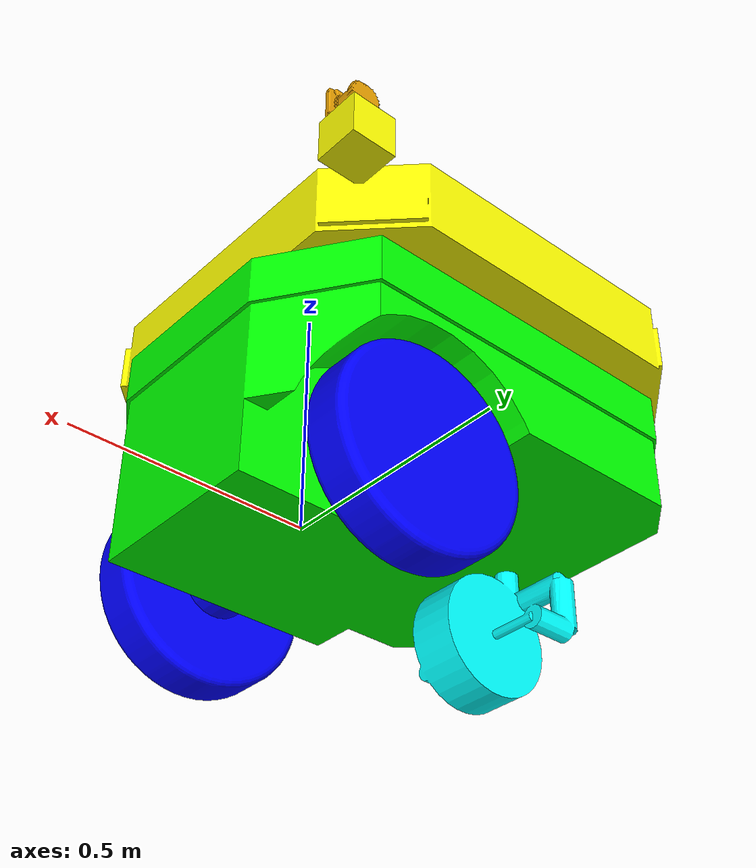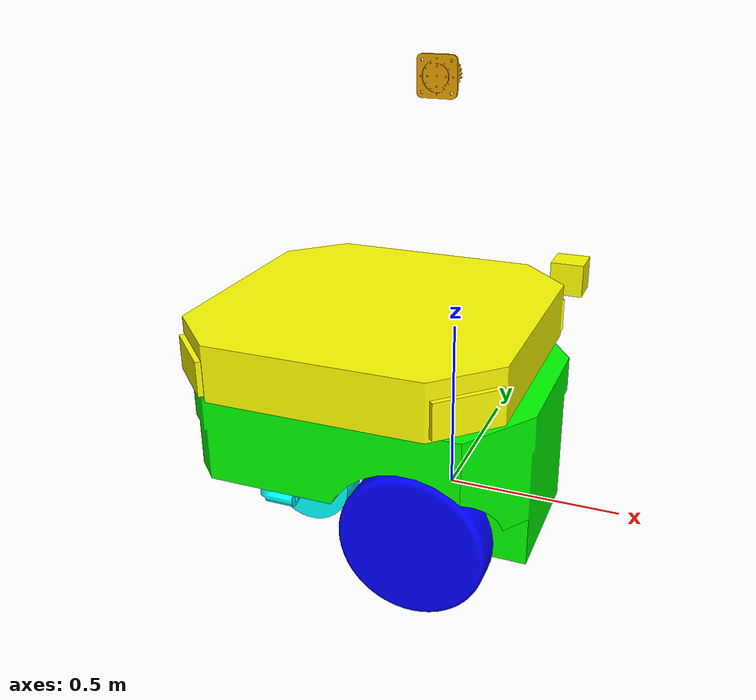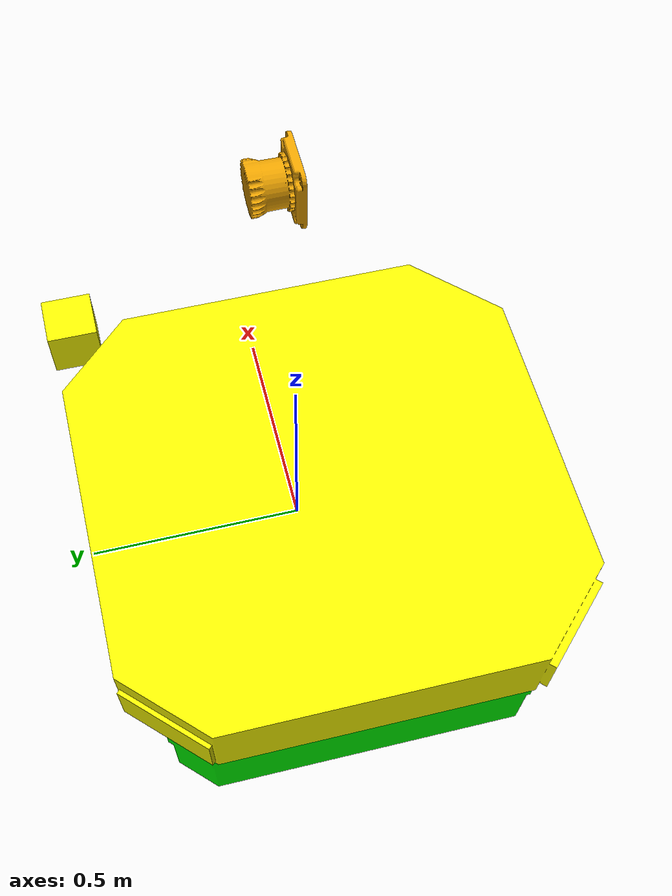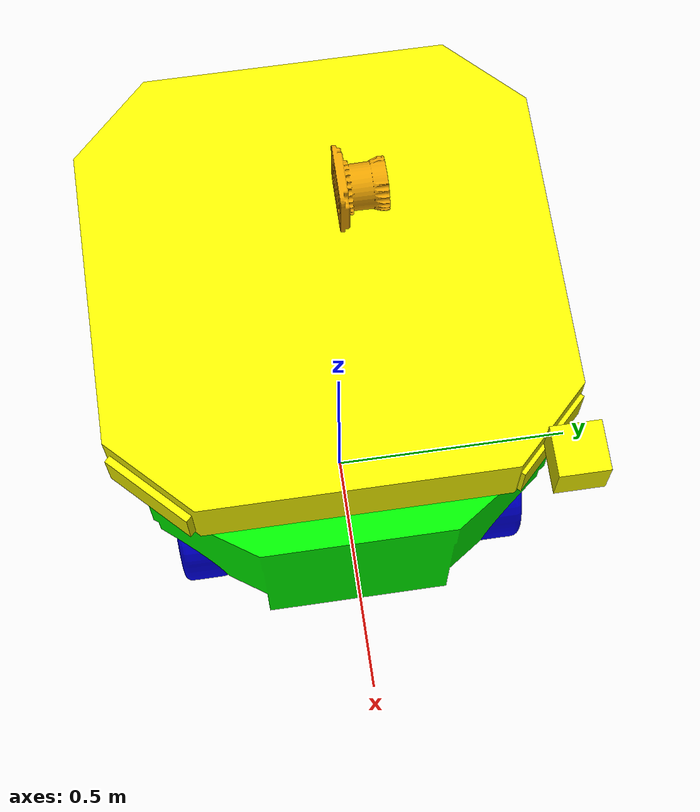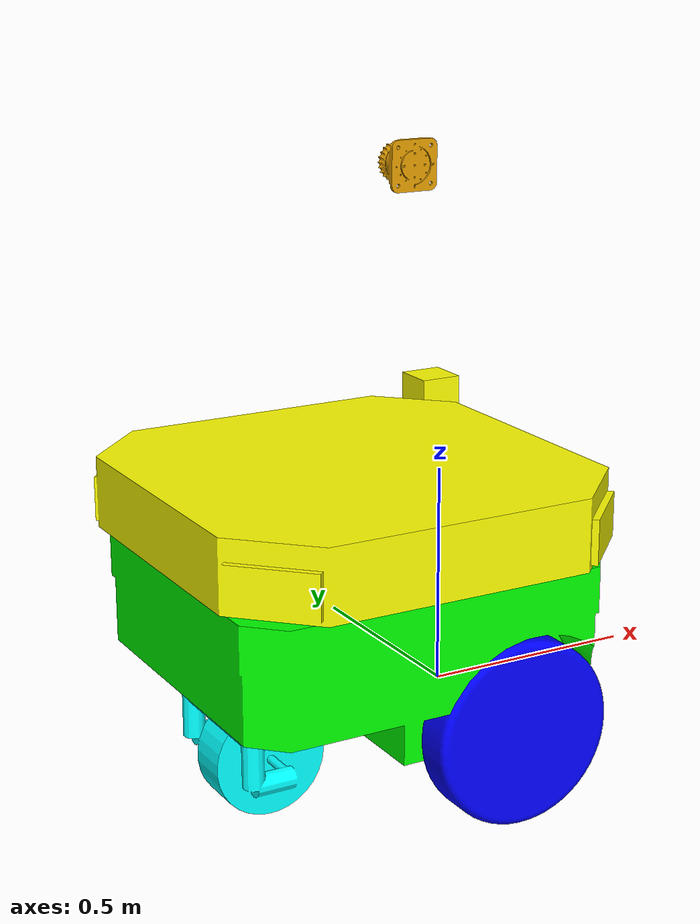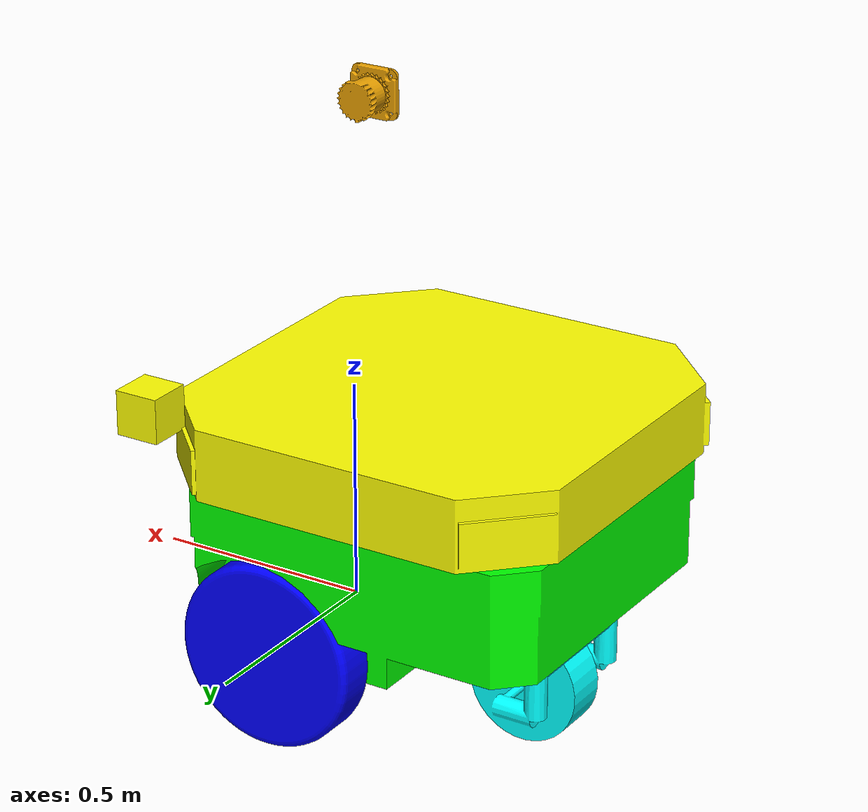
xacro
<?xml version="1.0"?>
<robot name="padih_bot" xmlns:xacro="http://ros.org/wiki/xacro">

    <xacro:property name="M_PI" value="3.1415926535897931"/>

    <xacro:arg name="namespace" default=" "/>
    <xacro:arg name="use_mock_hardware" default="false"/>
    <xacro:arg name="simulation" default="false"/>
    <xacro:arg name="namespace" default=" "/>
    <xacro:arg name="ros_domain_id" default=" "/>
    <xacro:property name="robot_id" value="$(arg ros_domain_id)"/>

    <xacro:include filename="padih_bot_colors.xacro"/>
    <xacro:include filename="padih_bot_inertias.xacro"/>

    <xacro:include filename="padih_bot_core.xacro"/>
    <xacro:include filename="gps.xacro"/>
    <xacro:include filename="OS1-32.xacro"/>
    <xacro:include filename="padih_bot_diffdrive_control.xacro"/>

</robot>

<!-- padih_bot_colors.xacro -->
<robot xmlns:xacro="http://ros.org/wiki/xacro">
    <material name=" white">
        <color rgba="1.0 1.0 1.0 1.0"/>
    </material>

    <material name="cyan">
        <color rgba="0.0 1.0 1.0 1.0"/>
    </material>

    <material name="grey">
        <color rgba="0.5 0.5 0.5 1.0"/>
    </material>

    <material name="red">
        <color rgba="1.0 0.0 0.0 1.0"/>
    </material>

    <material name="green">
        <color rgba="0.0 1.0 0.0 1.0"/>
    </material>

    <material name="blue">
        <color rgba="0.0 0.0 1.0  1"/>
    </material>

    <material name="yellow">
        <color rgba="1.0 1.0 0.0  1"/>
    </material>

</robot>

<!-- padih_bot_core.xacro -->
<robot xmlns:xacro="http://ros.org/wiki/xacro">

    <!-- Define robot constants -->
    <xacro:property name="turret_height" value="0.155"/>
    <xacro:property name="wheel_radius" value="0.21"/>
    <xacro:property name="wheel_zoff" value="0.05"/>
    <xacro:property name="friction_coefficient_1" value="10"/>
    <xacro:property name="friction_coefficient_2" value="10"/>

    <!--    base link-->
    <link name="base_link">
        <visual>
            <origin xyz="0 0 0" rpy="0 0 0"/>
            <geometry>
                <mesh filename="package://padih_bot/src/meshes/base_link.STL"/>
            </geometry>
            <material name="green"/>
        </visual>
        <collision>
            <origin xyz="0 0 0" rpy="0 0 0"/>
            <geometry>
                <mesh filename="package://padih_bot/src/meshes/base_link.STL"/>
            </geometry>
        </collision>

        <inertial>
            <origin xyz="-0.17165 1.6409E-07 0.20767" rpy="0 0 0"/>
            <mass value="205.75322253489"/>
            <inertia
                    ixx="11.009"
                    ixy="-1.3566E-05"
                    ixz="1.5177"
                    iyy="17.358"
                    iyz="8.228E-06"
                    izz="22.951"/>
        </inertial>
    </link>

    <gazebo reference="base_link">
        <material>Gazebo/Green</material>
    </gazebo>

    <!-- Turret link -->
    <link name="turret_link">
        <visual>
            <origin xyz="0 0 0" rpy="0 0 0"/>
            <geometry>
                <mesh filename="package://padih_bot/src/meshes/turret_link.STL"/>
            </geometry>
            <material name="yellow"/>
        </visual>
        <collision>
            <origin xyz="0 0 0" rpy="0 0 0"/>
            <geometry>
                <mesh filename="package://padih_bot/src/meshes/turret_link.STL"/>
            </geometry>
        </collision>

        <inertial>
            <origin xyz="-7.9119E-08 0.00055954 -0.00081615" rpy="0 0 0"/>
            <mass value="132.57"/>
            <inertia
                    ixx="9.017"
                    ixy="1.2768E-09"
                    ixz="4.6709E-08"
                    iyy="9.0171"
                    iyz="-0.0018655"
                    izz="17.448"/>
        </inertial>

    </link>

    <gazebo reference="turret_link">
        <material>Gazebo/Yellow</material>
    </gazebo>

    <joint name="turret_joint" type="continuous">
        <parent link="base_link"/>
        <child link="turret_link"/>
        <origin xyz="-0.226 0 0.4681 " rpy="0 0 0"/>
        <axis xyz="0 0 1"/>
    </joint>

    <link name="lidar_support_link">
        <inertial>
            <origin xyz="-0.0506041116867669 1.2490009027033E-14 -0.137752955099086" rpy="0 0 0"/>
            <mass value="0.322551800252601"/>
            <inertia
                    ixx="0.00159851475248136"
                    ixy="-3.56160413661488E-17"
                    ixz="-0.000154603735003629"
                    iyy="0.00134122357698014"
                    iyz="-1.1418133464673E-17"
                    izz="0.000967233017102162"/>
        </inertial>
        <visual>
            <origin xyz="0 0 0" rpy="0 0 0"/>
            <geometry>
                <mesh filename="package://padih_bot/src/meshes/lidar-link.STL"/>
            </geometry>
            <material name="">
                <material name="yellow"/>
            </material>
        </visual>
        <collision>
            <origin xyz="0 0 0" rpy="0 0 0"/>
            <geometry>
                <mesh filename="package://padih_bot/src/meshes/lidar-link.STL"/>
            </geometry>
        </collision>
    </link>
    <joint name="lidar_support_joint" type="fixed">
        <origin xyz="0.0 0.0 0.0" rpy="0 0 0.0"/>
        <parent link="turret_link"/>
        <child link="lidar_support_link"/>
        <axis xyz="0 0 0"/>
    </joint>

    <!-- Robot Footprint -->
    <link name="base_footprint"/>

    <joint name="base_joint" type="fixed">
        <parent link="base_link"/>
        <child link="base_footprint"/>
        <origin xyz="0.0 0.0 -${wheel_radius}" rpy="0 0 0"/>
    </joint>

    <!--Right wheel    -->
    <link name="drivewhl_r_joint_link">
        <visual>
            <origin xyz="0 0 0" rpy="0 0 0"/>
            <geometry>
                <mesh filename="package://padih_bot/src/meshes/right_wheel_link.STL"/>
            </geometry>
            <material name="blue"/>
        </visual>
        <collision>
            <origin xyz="0 0 0" rpy="0 0 0"/>
            <geometry>
                <mesh filename="package://padih_bot/src/meshes/right_wheel_link.STL"/>
            </geometry>
        </collision>

        <inertial>
            <origin xyz="0 -5.5511E-17 -0.0094094" rpy="0 0 0"/>
            <mass value="15.26"/>
            <inertia
                    ixx="0.17652"
                    ixy="1.4258E-17"
                    ixz="-2.3032E-18"
                    iyy="0.17652"
                    iyz="-4.6246E-18"
                    izz="0.30424"/>
        </inertial>
    </link>

    <gazebo reference="drivewhl_r_joint_link">
        <material>Gazebo/Blue</material>
        <mu1 value="${friction_coefficient_1}"/>
        <mu2 value="${friction_coefficient_2}"/>
    </gazebo>

    <joint name="drivewhl_r_joint" type="continuous">
        <parent link="base_link"/>
        <child link="drivewhl_r_joint_link"/>
        <origin xyz="0 -0.31757 0" rpy="1.5708 0 0"/>
        <axis xyz="0 0 -1"/>
    </joint>

    <!-- Left wheel    -->
    <link name="drivewhl_l_joint_link">
        <visual>
            <origin xyz="0 0 0" rpy="0 0 0"/>
            <geometry>
                <mesh filename="package://padih_bot/src/meshes/left_wheel_link.STL"/>
            </geometry>
            <material name="blue"/>
        </visual>
        <collision>
            <origin xyz="0 0 0" rpy="0 0 0"/>
            <geometry>
                <mesh filename="package://padih_bot/src/meshes/left_wheel_link.STL"/>
            </geometry>
        </collision>

        <inertial>
            <origin xyz="-2.7756E-17 5.5511E-17 -0.0094094" rpy="0 0 0"/>
            <mass value="15.26"/>
            <inertia
                    ixx="0.17652"
                    ixy="-8.1863E-19"
                    ixz="0"
                    iyy="0.17652"
                    iyz="6.7085E-18"
                    izz="0.30424"/>
        </inertial>
    </link>

    <gazebo reference="drivewhl_l_joint_link">
        <material>Gazebo/Blue</material>
        <mu1 value="${friction_coefficient_1}"/>
        <mu2 value="${friction_coefficient_2}"/>
    </gazebo>

    <joint name="drivewhl_l_joint" type="continuous">
        <parent link="base_link"/>
        <child link="drivewhl_l_joint_link"/>
        <origin xyz="0 0.31757 0" rpy="-1.5708 0 0"/>
        <axis xyz="0 0 1"/>
    </joint>

    <!-- Caster Wheel -->
    <link name="back_caster">
        <visual>
            <origin xyz="0 0 0" rpy="0 0 0"/>
            <geometry>
                <mesh filename="package://padih_bot/src/meshes/caster_wheel_link.STL"/>
            </geometry>
            <material name="cyan"/>
        </visual>
        <collision>
            <origin xyz="0 0 0" rpy="0 0 0"/>
            <geometry>
                <mesh filename="package://padih_bot/src/meshes/caster_wheel_link.STL"/>
            </geometry>
        </collision>

        <inertial>
            <origin xyz="0.07524 0.17287 1.4357E-07" rpy="0 0 0"/>
            <mass value="6.74062536527573"/>
            <inertia
                    ixx="0.057604"
                    ixy="-0.0074758"
                    ixz="-4.0884E-08"
                    iyy="0.05582"
                    iyz="1.4163E-08"
                    izz="0.062763"/>
        </inertial>
    </link>

    <gazebo reference="back_caster">
        <material>Gazebo/Black</material>
        <!-- Defining caster wheel's friction coefficients for a smooth motion-->
        <mu1 value="0.01"/>
        <mu2 value="0.01"/>
    </gazebo>

    <joint name="caster_joint" type="fixed">
        <parent link="base_link"/>
        <child link="back_caster"/>
        <origin xyz="-0.547 0 0.10752" rpy="-1.5708 0 0"/>
    </joint>
</robot>

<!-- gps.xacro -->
<robot name="padih_bot" xmlns:xacro="http://ros.org/wiki/xacro">

    <link name="gps_link">
        <visual>
            <geometry>
                <box size="0.1 0.1 0.1"/>
            </geometry>
            <material name="yellow"/>
        </visual>

        <collision>
            <geometry>
                <box size="0.1 0.1 0.1"/>
            </geometry>
        </collision>
        <xacro:box_inertia m="0.1" w="0.1" d="0.1" h="0.1"/>
    </link>

    <joint name="gps_joint" type="fixed">
        <parent link="turret_link"/>
        <child link="gps_link"/>
        <origin xyz="0.457 0.420 ${turret_height/2}" rpy="0 0 0"/>
    </joint>

    <gazebo reference="gps_link">
        <material>Gazebo/Yellow</material>
        <sensor name="tb3_gps" type="gps">
            <always_on>true</always_on>
            <update_rate>5</update_rate>
            <pose>0 0 0 0 0 0</pose>
            <gps>
                <position_sensing>
                    <horizontal>
                        <noise type="gaussian">
                            <mean>0.0</mean>
                            <stddev>0.01</stddev>
                        </noise>
                    </horizontal>
                    <vertical>
                        <noise type="gaussian">
                            <mean>0.0</mean>
                            <stddev>0.01</stddev>
                        </noise>
                    </vertical>
                </position_sensing>
            </gps>
            <plugin name="my_gps_plugin" filename="libgazebo_ros_gps_sensor.so">
                <ros>
                    <remapping>~/out:=/gps/fix</remapping>
                </ros>
                <frame_name>gps_link</frame_name>
            </plugin>
        </sensor>
    </gazebo>

</robot>

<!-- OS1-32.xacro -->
<robot xmlns:xacro="http://www.ros.org/wiki/xacro" name="OS1-32">

    <!-- ROS and Gazebo configuration -->
    <xacro:property name="os_sensor_link" value="os_sensor" />
    <xacro:property name="os_lidar_link" value="os_lidar" />
    <xacro:property name="os_imu_link" value="os_imu" />
    <xacro:property name="topic_points" value="/ouster/points" />
    <xacro:property name="topic_scan" value="/ouster/scan" />
    <xacro:property name="topic_imu" value="/ouster/imu" />

    <!-- Optical and IMU properties -->
    <xacro:property name="lidar_hz" value="10" />
    <xacro:property name="imu_hz" value="30" />
    <xacro:property name="num_lasers" value="3" />
    <xacro:property name="samples" value="1024" />
    <xacro:property name="min_range" value="0.5" />
    <xacro:property name="max_range" value="90" />
    <xacro:property name="range_resolution" value="0.001" />
    <xacro:property name="lidar_noise" value="0.005" />
    <xacro:property name="imu_noise" value="0.005" />
    <xacro:property name="min_angle" value="-${M_PI}" />
    <xacro:property name="max_angle" value="${M_PI}" />
    <xacro:property name="vfov_above" value="${22.5*M_PI/180}" />
    <xacro:property name="vfov_below" value="${-22.5*M_PI/180}" />

    <!-- Mechanical properties -->
    <xacro:property name="lidar_mass" value="${0.495}" />
    <xacro:property name="lidar_radius" value="${0.0435}" />
    <xacro:property name="lidar_height" value="${0.0742}" />

    <!-- Define 3 links (sensor, lidar, imu) and their 3 joints -->
    <link name="${os_sensor_link}">
        <xacro:cylinder_inertia m="${lidar_mass}" r="${lidar_radius}" h="${lidar_height}">
            <origin xyz="0 0 ${lidar_height/2}" rpy="0 0 0" />
        </xacro:cylinder_inertia>
        <collision name="base_collision">
            <origin xyz="0 0 0" rpy="0 0 0" />
            <geometry>
                <!-- Loading the mesh as collision is not necessary and it rises problems when loading -->
                <cylinder radius="${lidar_radius}" length="${lidar_height}" />
            </geometry>
        </collision>
        <visual name="base_visual">
            <origin xyz="0 0 0" rpy="0 0 0" />
            <geometry>
                <mesh filename="package://agri_bot/src/meshes/os1_32.STL" scale="0.001 0.001 0.001"/>
            </geometry>
        </visual>
    </link>

    <link name="${os_lidar_link}" />

    <link name="${os_imu_link}" />

    <joint name="${os_sensor_link}_joint" type="fixed">
        <parent link="lidar_support_link" />
        <child link="${os_sensor_link}" />
        <origin xyz="0.105 0 0.6525" rpy="0 0 0" />
    </joint>

    <joint name="${os_imu_link}_joint" type="fixed">
        <parent link="${os_sensor_link}" />
        <child link="${os_imu_link}" />
        <origin xyz="0.006253 -0.011775 0.007645" rpy="0 0 0" />
    </joint>

    <joint name="${os_lidar_link}_joint" type="fixed">
        <parent link="${os_sensor_link}" />
        <child link="${os_lidar_link}" />
        <origin xyz="0 0 ${lidar_height/2}" rpy="0 0 ${M_PI}" />
    </joint>

    <!-- Lidar PoinCloud2 plugin -->
    <gazebo reference="${os_lidar_link}">
        <material>Gazebo/Grey</material>
        <sensor type="ray" name="${os_lidar_link}">
            <visualize>false</visualize>
            <update_rate>${lidar_hz}</update_rate>
            <ray>
                <scan>
                    <horizontal>
                        <samples>${samples}</samples>
                        <resolution>1</resolution>
                        <min_angle>${min_angle}</min_angle>
                        <max_angle>${max_angle}</max_angle>
                    </horizontal>
                    <vertical>
                        <samples>${num_lasers}</samples>
                        <resolution>1</resolution>
                        <min_angle>${vfov_below}</min_angle>
                        <max_angle>${vfov_above}</max_angle>
                    </vertical>
                </scan>
                <range>
                    <min>${min_range}</min>
                    <max>${max_range}</max>
                    <resolution>${range_resolution}</resolution>
                </range>
                <noise>
                    <type>gaussian</type>
                    <mean>0.0</mean>
                    <stddev>${lidar_noise}</stddev>
                </noise>
            </ray>
            <plugin name="${os_lidar_link}" filename="libgazebo_ros_velodyne_laser.so">
                <ros>
                    <namespace>/${os_sensor_link}</namespace>
                    <remapping>~/out:=${topic_points}</remapping>
                </ros>
                <frame_name>${os_lidar_link}</frame_name>
                <organize_cloud>true</organize_cloud>
                <min_range>${min_range}</min_range>
                <max_range>${max_range}</max_range>
                <gaussian_noise>${lidar_noise}</gaussian_noise>
            </plugin>
        </sensor>
    </gazebo>

    <!-- LaserScan plugin -->
    <gazebo reference="${os_lidar_link}">
        <sensor name="${os_lidar_link}_scan" type="ray">
            <always_on>true</always_on>
            <visualize>false</visualize>
            <update_rate>${lidar_hz}</update_rate>
            <ray>
                <scan>
                    <horizontal>
                        <samples>${samples}</samples>
                        <resolution>1</resolution>
                        <min_angle>${min_angle}</min_angle>
                        <max_angle>${max_angle}</max_angle>
                    </horizontal>
                </scan>
                <range>
                    <min>${min_range}</min>
                    <max>${max_range}</max>
                    <resolution>${range_resolution}</resolution>
                </range>
                <noise>
                    <type>gaussian</type>
                    <mean>0.0</mean>
                    <stddev>${lidar_noise}</stddev>
                </noise>
            </ray>
            <plugin name="${os_lidar_link}_scan" filename="libgazebo_ros_ray_sensor.so">
                <ros>
                    <namespace>$(arg namespace)</namespace>
                    <remapping>~/out:=${topic_scan}</remapping>
                </ros>
                <output_type>sensor_msgs/LaserScan</output_type>
                <frame_name>${os_lidar_link}</frame_name>
            </plugin>
        </sensor>
    </gazebo>

    <!-- IMU plugin -->
    <gazebo reference="${os_imu_link}">
        <sensor name="${os_imu_link}" type="imu">
            <always_on>true</always_on>
            <update_rate>${imu_hz}</update_rate>
            <imu>
                <rate>${imu_hz}</rate>
                <accel>
                    <noise>
                        <type>gaussian</type>
                        <rate>${imu_noise}</rate>
                        <accel>X Y Z</accel>
                    </noise>
                </accel>
                <gyro>
                    <noise>
                        <type>gaussian</type>
                        <rate>${imu_noise}</rate>
                        <gyro>X Y Z</gyro>
                    </noise>
                </gyro>
            </imu>
            <plugin name="imu" filename="libgazebo_ros_imu_sensor.so">
                <ros>
                    <namespace>/${os_sensor_link}</namespace>
                    <remapping>~/out:=${topic_imu}</remapping>
                </ros>
                <frame_name>${os_imu_link}</frame_name>
            </plugin>
        </sensor>
    </gazebo>

</robot>
